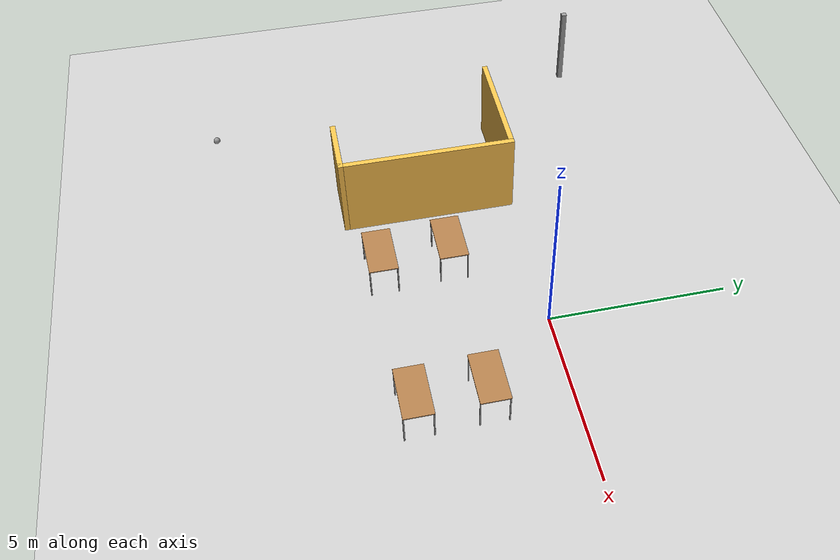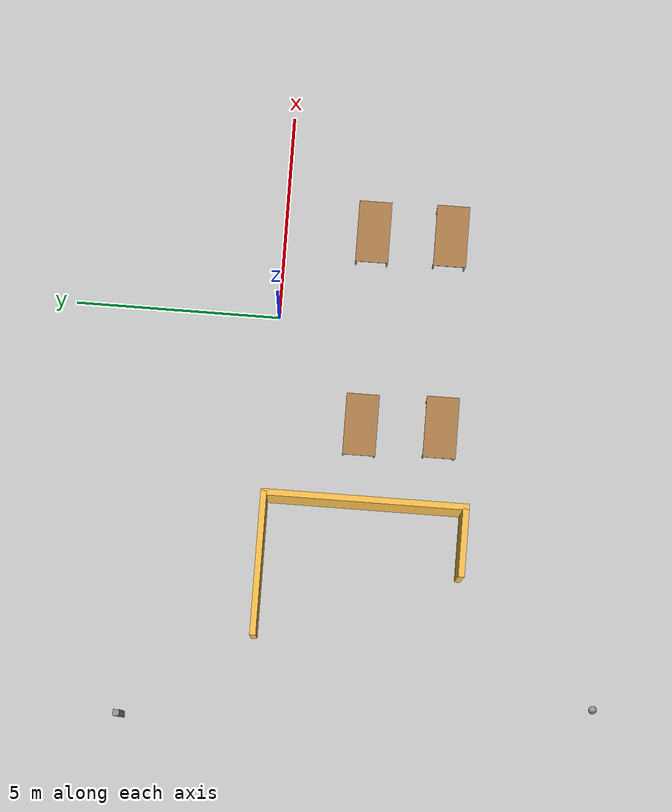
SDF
<sdf version="1.6">
 <world name="default">
  <model name="ground_plane">
   <static>1</static>
   <link name="link">
    <collision name="collision">
     <geometry><plane><normal>0 0 1</normal><size>100 100</size></plane></geometry>
     <surface>
      <contact><collide_bitmask>65535</collide_bitmask></contact>
      <friction><ode><mu>100</mu><mu2>50</mu2></ode></friction>
     </surface>
    </collision>
    <visual name="visual">
     <cast_shadows>0</cast_shadows>
     <geometry><plane><normal>0 0 1</normal><size>100 100</size></plane></geometry>
     <material>
      <script><uri>file://media/materials/scripts/gazebo.material</uri><name>Gazebo/Grey</name></script>
     </material>
    </visual>
   </link>
  </model>
  <model name="model_0">
   <pose>-7.249 -0.8735 0 0 -0 0</pose>
   <link name="Wall_66">
    <collision name="Wall_66_Collision">
     <geometry><box><size>0.15 0.15 2.5</size></box></geometry>
     <pose>0 0 1.25 0 -0 0</pose>
    </collision>
    <visual name="Wall_66_Visual">
     <pose>0 0 1.25 0 -0 0</pose>
     <geometry><box><size>0.15 0.15 2.5</size></box></geometry>
     <material>
      <script><uri>file://media/materials/scripts/gazebo.material</uri><name>Gazebo/Grey</name></script>
      <ambient>1 1 1 1</ambient>
     </material>
     <meta><layer>0</layer></meta>
    </visual>
    <pose>-2.751 3.9665 0 0 -0 0</pose>
   </link>
   <link name="Wall_67">
    <collision name="Wall_67_Collision">
     <geometry><box><size>3.5 0.15 2.5</size></box></geometry>
     <pose>0 0 1.25 0 -0 0</pose>
    </collision>
    <visual name="Wall_67_Visual">
     <pose>0 0 1.25 0 -0 0</pose>
     <geometry><box><size>3.5 0.15 2.5</size></box></geometry>
     <material>
      <script><uri>file://media/materials/scripts/gazebo.material</uri><name>Gazebo/Grey</name></script>
      <ambient>1 0.764706 0.305882 1</ambient>
     </material>
     <meta><layer>0</layer></meta>
    </visual>
    <pose>1.07582 0.883336 0 0 -0 9.8e-05</pose>
   </link>
   <link name="Wall_72">
    <collision name="Wall_72_Collision">
     <geometry><box><size>5 0.15 2.5</size></box></geometry>
     <pose>0 0 1.25 0 -0 0</pose>
    </collision>
    <visual name="Wall_72_Visual">
     <pose>0 0 1.25 0 -0 0</pose>
     <geometry><box><size>5 0.15 2.5</size></box></geometry>
     <material>
      <script><uri>file://media/materials/scripts/gazebo.material</uri><name>Gazebo/Grey</name></script>
      <ambient>1 0.764706 0.305882 1</ambient>
     </material>
     <meta><layer>0</layer></meta>
    </visual>
    <pose>2.751 -1.5415 0 0 -0 -1.5708</pose>
   </link>
   <link name="Wall_73">
    <collision name="Wall_73_Collision">
     <geometry><box><size>1.75 0.15 2.5</size></box></geometry>
     <pose>0 0 1.25 0 -0 0</pose>
    </collision>
    <visual name="Wall_73_Visual">
     <pose>0 0 1.25 0 -0 0</pose>
     <geometry><box><size>1.75 0.15 2.5</size></box></geometry>
     <material>
      <script><uri>file://media/materials/scripts/gazebo.material</uri><name>Gazebo/Grey</name></script>
      <ambient>1 0.764706 0.305882 1</ambient>
     </material>
     <meta><layer>0</layer></meta>
    </visual>
    <pose>1.951 -3.9665 0 0 -0 3.14159</pose>
   </link>
   <static>1</static>
  </model>
  <model name="model_3">
   <model name="table">
    <static>1</static>
    <link name="link">
     <collision name="surface">
      <pose>0 0 1 0 -0 0</pose>
      <geometry><box><size>1.5 0.8 0.03</size></box></geometry>
      <surface><friction><ode><mu>0.6</mu><mu2>0.6</mu2></ode></friction></surface>
     </collision>
     <visual name="visual1">
      <pose>0 0 1 0 -0 0</pose>
      <geometry><box><size>1.5 0.8 0.03</size></box></geometry>
      <material>
       <script><uri>file://media/materials/scripts/gazebo.material</uri><name>Gazebo/Wood</name></script>
      </material>
     </visual>
     <collision name="front_left_leg">
      <pose>0.68 0.38 0.5 0 -0 0</pose>
      <geometry><cylinder><radius>0.02</radius><length>1</length></cylinder></geometry>
     </collision>
     <visual name="front_left_leg">
      <pose>0.68 0.38 0.5 0 -0 0</pose>
      <geometry><cylinder><radius>0.02</radius><length>1</length></cylinder></geometry>
      <material>
       <script><uri>file://media/materials/scripts/gazebo.material</uri><name>Gazebo/Grey</name></script>
      </material>
     </visual>
     <collision name="front_right_leg">
      <pose>0.68 -0.38 0.5 0 -0 0</pose>
      <geometry><cylinder><radius>0.02</radius><length>1</length></cylinder></geometry>
     </collision>
     <visual name="front_right_leg">
      <pose>0.68 -0.38 0.5 0 -0 0</pose>
      <geometry><cylinder><radius>0.02</radius><length>1</length></cylinder></geometry>
      <material>
       <script><uri>file://media/materials/scripts/gazebo.material</uri><name>Gazebo/Grey</name></script>
      </material>
     </visual>
     <collision name="back_right_leg">
      <pose>-0.68 -0.38 0.5 0 -0 0</pose>
      <geometry><cylinder><radius>0.02</radius><length>1</length></cylinder></geometry>
     </collision>
     <visual name="back_right_leg">
      <pose>-0.68 -0.38 0.5 0 -0 0</pose>
      <geometry><cylinder><radius>0.02</radius><length>1</length></cylinder></geometry>
      <material>
       <script><uri>file://media/materials/scripts/gazebo.material</uri><name>Gazebo/Grey</name></script>
      </material>
     </visual>
     <collision name="back_left_leg">
      <pose>-0.68 0.38 0.5 0 -0 0</pose>
      <geometry><cylinder><radius>0.02</radius><length>1</length></cylinder></geometry>
     </collision>
     <visual name="back_left_leg">
      <pose>-0.68 0.38 0.5 0 -0 0</pose>
      <geometry><cylinder><radius>0.02</radius><length>1</length></cylinder></geometry>
      <material>
       <script><uri>file://media/materials/scripts/gazebo.material</uri><name>Gazebo/Grey</name></script>
      </material>
     </visual>
    </link>
    <pose>2.34769 0.983823 -0.013295 0 -0 0</pose>
   </model>
   <model name="table_clone">
    <static>1</static>
    <link name="link">
     <collision name="surface">
      <pose>0 0 1 0 -0 0</pose>
      <geometry><box><size>1.5 0.8 0.03</size></box></geometry>
      <surface><friction><ode><mu>0.6</mu><mu2>0.6</mu2></ode></friction></surface>
     </collision>
     <visual name="visual1">
      <pose>0 0 1 0 -0 0</pose>
      <geometry><box><size>1.5 0.8 0.03</size></box></geometry>
      <material>
       <script><uri>file://media/materials/scripts/gazebo.material</uri><name>Gazebo/Wood</name></script>
      </material>
     </visual>
     <collision name="front_left_leg">
      <pose>0.68 0.38 0.5 0 -0 0</pose>
      <geometry><cylinder><radius>0.02</radius><length>1</length></cylinder></geometry>
     </collision>
     <visual name="front_left_leg">
      <pose>0.68 0.38 0.5 0 -0 0</pose>
      <geometry><cylinder><radius>0.02</radius><length>1</length></cylinder></geometry>
      <material>
       <script><uri>file://media/materials/scripts/gazebo.material</uri><name>Gazebo/Grey</name></script>
      </material>
     </visual>
     <collision name="front_right_leg">
      <pose>0.68 -0.38 0.5 0 -0 0</pose>
      <geometry><cylinder><radius>0.02</radius><length>1</length></cylinder></geometry>
     </collision>
     <visual name="front_right_leg">
      <pose>0.68 -0.38 0.5 0 -0 0</pose>
      <geometry><cylinder><radius>0.02</radius><length>1</length></cylinder></geometry>
      <material>
       <script><uri>file://media/materials/scripts/gazebo.material</uri><name>Gazebo/Grey</name></script>
      </material>
     </visual>
     <collision name="back_right_leg">
      <pose>-0.68 -0.38 0.5 0 -0 0</pose>
      <geometry><cylinder><radius>0.02</radius><length>1</length></cylinder></geometry>
     </collision>
     <visual name="back_right_leg">
      <pose>-0.68 -0.38 0.5 0 -0 0</pose>
      <geometry><cylinder><radius>0.02</radius><length>1</length></cylinder></geometry>
      <material>
       <script><uri>file://media/materials/scripts/gazebo.material</uri><name>Gazebo/Grey</name></script>
      </material>
     </visual>
     <collision name="back_left_leg">
      <pose>-0.68 0.38 0.5 0 -0 0</pose>
      <geometry><cylinder><radius>0.02</radius><length>1</length></cylinder></geometry>
     </collision>
     <visual name="back_left_leg">
      <pose>-0.68 0.38 0.5 0 -0 0</pose>
      <geometry><cylinder><radius>0.02</radius><length>1</length></cylinder></geometry>
      <material>
       <script><uri>file://media/materials/scripts/gazebo.material</uri><name>Gazebo/Grey</name></script>
      </material>
     </visual>
    </link>
    <pose>-2.40389 0.944422 0.016363 0 -0 0</pose>
   </model>
   <model name="table_clone_clone">
    <static>1</static>
    <link name="link">
     <collision name="surface">
      <pose>0 0 1 0 -0 0</pose>
      <geometry><box><size>1.5 0.8 0.03</size></box></geometry>
      <surface><friction><ode><mu>0.6</mu><mu2>0.6</mu2></ode></friction></surface>
     </collision>
     <visual name="visual1">
      <pose>0 0 1 0 -0 0</pose>
      <geometry><box><size>1.5 0.8 0.03</size></box></geometry>
      <material>
       <script><uri>file://media/materials/scripts/gazebo.material</uri><name>Gazebo/Wood</name></script>
      </material>
     </visual>
     <collision name="front_left_leg">
      <pose>0.68 0.38 0.5 0 -0 0</pose>
      <geometry><cylinder><radius>0.02</radius><length>1</length></cylinder></geometry>
     </collision>
     <visual name="front_left_leg">
      <pose>0.68 0.38 0.5 0 -0 0</pose>
      <geometry><cylinder><radius>0.02</radius><length>1</length></cylinder></geometry>
      <material>
       <script><uri>file://media/materials/scripts/gazebo.material</uri><name>Gazebo/Grey</name></script>
      </material>
     </visual>
     <collision name="front_right_leg">
      <pose>0.68 -0.38 0.5 0 -0 0</pose>
      <geometry><cylinder><radius>0.02</radius><length>1</length></cylinder></geometry>
     </collision>
     <visual name="front_right_leg">
      <pose>0.68 -0.38 0.5 0 -0 0</pose>
      <geometry><cylinder><radius>0.02</radius><length>1</length></cylinder></geometry>
      <material>
       <script><uri>file://media/materials/scripts/gazebo.material</uri><name>Gazebo/Grey</name></script>
      </material>
     </visual>
     <collision name="back_right_leg">
      <pose>-0.68 -0.38 0.5 0 -0 0</pose>
      <geometry><cylinder><radius>0.02</radius><length>1</length></cylinder></geometry>
     </collision>
     <visual name="back_right_leg">
      <pose>-0.68 -0.38 0.5 0 -0 0</pose>
      <geometry><cylinder><radius>0.02</radius><length>1</length></cylinder></geometry>
      <material>
       <script><uri>file://media/materials/scripts/gazebo.material</uri><name>Gazebo/Grey</name></script>
      </material>
     </visual>
     <collision name="back_left_leg">
      <pose>-0.68 0.38 0.5 0 -0 0</pose>
      <geometry><cylinder><radius>0.02</radius><length>1</length></cylinder></geometry>
     </collision>
     <visual name="back_left_leg">
      <pose>-0.68 0.38 0.5 0 -0 0</pose>
      <geometry><cylinder><radius>0.02</radius><length>1</length></cylinder></geometry>
      <material>
       <script><uri>file://media/materials/scripts/gazebo.material</uri><name>Gazebo/Grey</name></script>
      </material>
     </visual>
    </link>
    <pose>2.38395 -0.922438 -0.013295 0 -0 0</pose>
   </model>
   <model name="table_clone_clone_clone">
    <static>1</static>
    <link name="link">
     <collision name="surface">
      <pose>0 0 1 0 -0 0</pose>
      <geometry><box><size>1.5 0.8 0.03</size></box></geometry>
      <surface><friction><ode><mu>0.6</mu><mu2>0.6</mu2></ode></friction></surface>
     </collision>
     <visual name="visual1">
      <pose>0 0 1 0 -0 0</pose>
      <geometry><box><size>1.5 0.8 0.03</size></box></geometry>
      <material>
       <script><uri>file://media/materials/scripts/gazebo.material</uri><name>Gazebo/Wood</name></script>
      </material>
     </visual>
     <collision name="front_left_leg">
      <pose>0.68 0.38 0.5 0 -0 0</pose>
      <geometry><cylinder><radius>0.02</radius><length>1</length></cylinder></geometry>
     </collision>
     <visual name="front_left_leg">
      <pose>0.68 0.38 0.5 0 -0 0</pose>
      <geometry><cylinder><radius>0.02</radius><length>1</length></cylinder></geometry>
      <material>
       <script><uri>file://media/materials/scripts/gazebo.material</uri><name>Gazebo/Grey</name></script>
      </material>
     </visual>
     <collision name="front_right_leg">
      <pose>0.68 -0.38 0.5 0 -0 0</pose>
      <geometry><cylinder><radius>0.02</radius><length>1</length></cylinder></geometry>
     </collision>
     <visual name="front_right_leg">
      <pose>0.68 -0.38 0.5 0 -0 0</pose>
      <geometry><cylinder><radius>0.02</radius><length>1</length></cylinder></geometry>
      <material>
       <script><uri>file://media/materials/scripts/gazebo.material</uri><name>Gazebo/Grey</name></script>
      </material>
     </visual>
     <collision name="back_right_leg">
      <pose>-0.68 -0.38 0.5 0 -0 0</pose>
      <geometry><cylinder><radius>0.02</radius><length>1</length></cylinder></geometry>
     </collision>
     <visual name="back_right_leg">
      <pose>-0.68 -0.38 0.5 0 -0 0</pose>
      <geometry><cylinder><radius>0.02</radius><length>1</length></cylinder></geometry>
      <material>
       <script><uri>file://media/materials/scripts/gazebo.material</uri><name>Gazebo/Grey</name></script>
      </material>
     </visual>
     <collision name="back_left_leg">
      <pose>-0.68 0.38 0.5 0 -0 0</pose>
      <geometry><cylinder><radius>0.02</radius><length>1</length></cylinder></geometry>
     </collision>
     <visual name="back_left_leg">
      <pose>-0.68 0.38 0.5 0 -0 0</pose>
      <geometry><cylinder><radius>0.02</radius><length>1</length></cylinder></geometry>
      <material>
       <script><uri>file://media/materials/scripts/gazebo.material</uri><name>Gazebo/Grey</name></script>
      </material>
     </visual>
    </link>
    <pose>-2.32775 -1.00581 0.010227 0 -0 0</pose>
   </model>
   <static>0</static>
   <pose>-0.176 -3.13916 0.013295 0 -0 0</pose>
  </model>
  <model name="my_ball_">
   <link name="link_0">
    <inertial>
     <mass>1</mass>
     <inertia><ixx>0.1</ixx><ixy>0</ixy><ixz>0</ixz><iyy>0.1</iyy><iyz>0</iyz><izz>0.1</izz></inertia>
    </inertial>
    <visual name="visual">
     <geometry><sphere><radius>0.1</radius></sphere></geometry>
     <material>
      <lighting>1</lighting>
      <script><uri>file://media/materials/scripts/gazebo.material</uri><name>Gazebo/Grey</name></script>
      <shader type="vertex"><normal_map>__default__</normal_map></shader>
      <ambient>1 1 1 1</ambient>
      <diffuse>1 1 1 1</diffuse>
      <specular>1 1 1 1</specular>
      <emissive>1 1 1 1</emissive>
     </material>
    </visual>
    <collision name="collision">
     <geometry><sphere><radius>0.1</radius></sphere></geometry>
     <surface>
      <friction>
       <ode><mu>1</mu><mu2>1</mu2><fdir1>0 0 0</fdir1><slip1>0</slip1><slip2>0</slip2></ode>
       <torsional>
        <coefficient>1</coefficient>
        <patch_radius>0</patch_radius>
        <surface_radius>0</surface_radius>
        <use_patch_radius>1</use_patch_radius>
        <ode><slip>0</slip></ode>
       </torsional>
      </friction>
      <bounce><restitution_coefficient>0</restitution_coefficient><threshold>1e+06</threshold></bounce>
      <contact>
       <collide_without_contact>0</collide_without_contact>
       <collide_without_contact_bitmask>1</collide_without_contact_bitmask>
       <collide_bitmask>1</collide_bitmask>
       <ode>
        <soft_cfm>0</soft_cfm>
        <soft_erp>0.2</soft_erp>
        <kp>1e+13</kp>
        <kd>1</kd>
        <max_vel>0.01</max_vel>
        <min_depth>0</min_depth>
       </ode>
       <bullet>
        <split_impulse>1</split_impulse>
        <split_impulse_penetration_threshold>-0.01</split_impulse_penetration_threshold>
        <soft_cfm>0</soft_cfm>
        <soft_erp>0.2</soft_erp>
        <kp>1e+13</kp>
        <kd>1</kd>
       </bullet>
      </contact>
     </surface>
    </collision>
   </link>
   <static>0</static>
   <pose>-9.03919 -8.35185 0.1 0 -0 0</pose>
  </model>
 </world>
</sdf>
